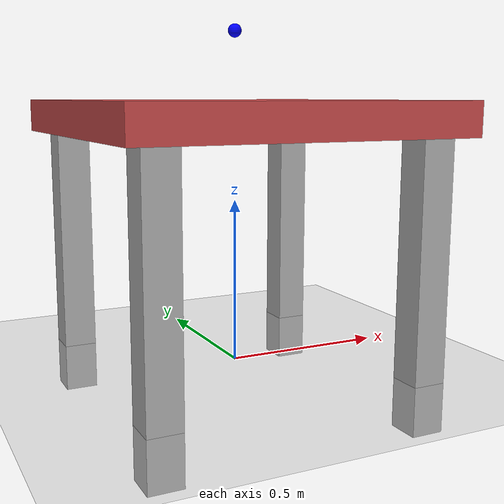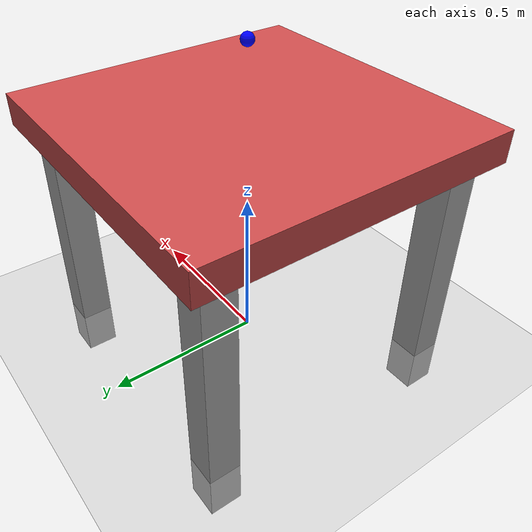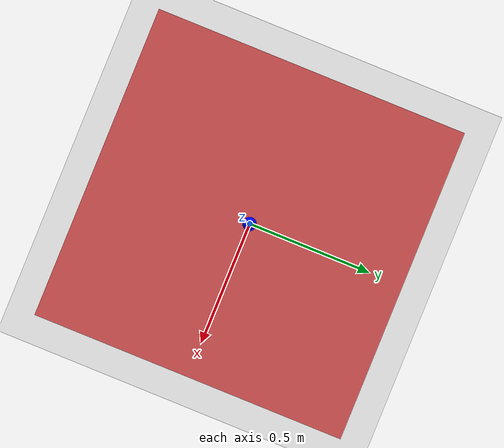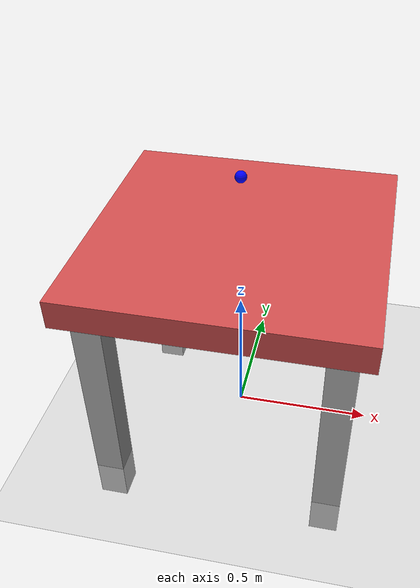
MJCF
<mujoco model="dummy_workspace">
  <compiler angle="degree" coordinate="local"/>
  <option gravity="0 0 -9.81" timestep="0.002" integrator="implicitfast"/>

  <!-- Default settings -->
  <default>
    <geom rgba="0.7 0.7 0.7 1"/>
    <joint armature="0.01" damping="1"/>
  </default>

  <!-- Assets -->
  <asset>
    <texture name="ground" type="2d" builtin="checker" rgb1="0.2 0.3 0.4" rgb2="0.1 0.2 0.3" width="512" height="512"/>
    <material name="ground" texture="ground" texrepeat="1 1" texuniform="true" rgba="0.5 0.5 0.5 1"/>
  </asset>

  <!-- Worldbody -->
  <worldbody>
    <!-- Ground plane -->
    <geom name="floor" type="plane" pos="0 0 0" size="5 5 0.1" material="ground"/>

    <!-- Table -->
    <body name="table" pos="0 0 0.75">
      <geom name="table_top" type="box" size="0.5 0.5 0.05" rgba="0.8 0.3 0.3 1"/>
      <geom name="table_leg1" type="box" pos="0.4 0.4 -0.45" size="0.05 0.05 0.45"/>
      <geom name="table_leg2" type="box" pos="-0.4 0.4 -0.45" size="0.05 0.05 0.45"/>
      <geom name="table_leg3" type="box" pos="0.4 -0.4 -0.45" size="0.05 0.05 0.45"/>
      <geom name="table_leg4" type="box" pos="-0.4 -0.4 -0.45" size="0.05 0.05 0.45"/>
    </body>

    <!-- Workspace marker -->
    <body name="workspace_frame" pos="0 0 1.0">
      <geom name="workspace_marker" type="sphere" size="0.02" rgba="0 0 1 1"/>
    </body>
  </worldbody>
</mujoco>
